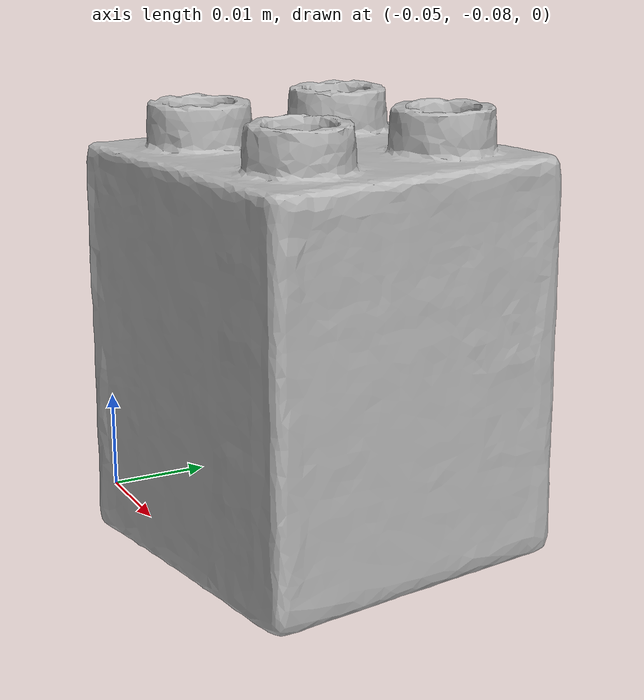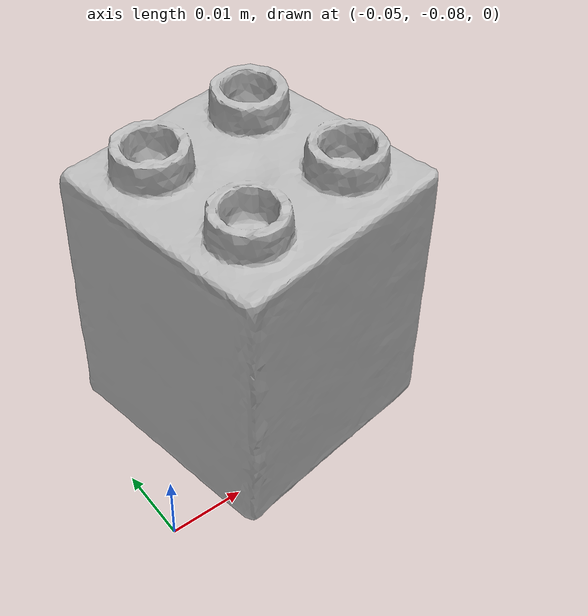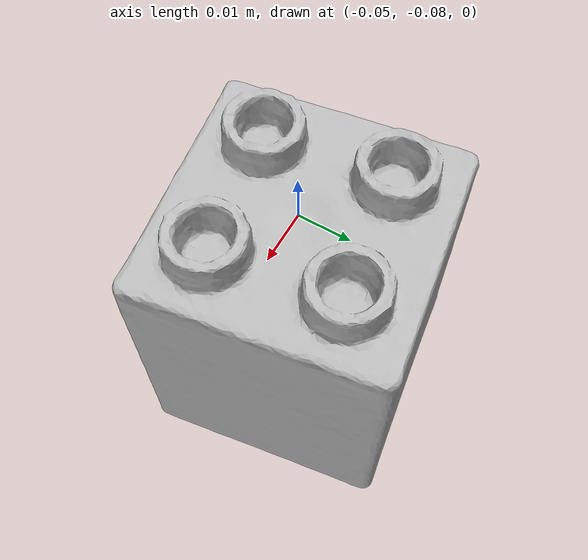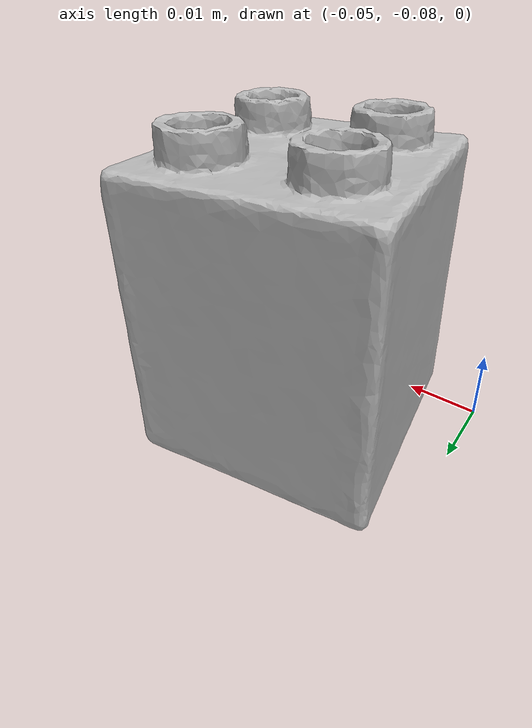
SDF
<?xml version='1.0'?>
<sdf version="1.4">
  <model name="f_lego_duplo">
    <static>false</static>
    <link name="link">
      <inertial>
        <pose>-0.028303653148494836 -0.06646108978076669 0.02360720585959244 3.080372202841051 0.147020869635075 -3.020982405318834</pose>
        <mass>3.094883764375316e-05</mass>
        <inertia>
          <ixx>5.9147580171445955e-09</ixx>
          <ixy>-4.205742611926794e-26</ixy>
          <ixz>-1.081027487550294e-26</ixz>
          <iyy>5.903230909155454e-09</iyy>
          <iyz>1.9680603330939063e-24</iyz>
          <izz>5.691088145340697e-09</izz>
        </inertia>
      </inertial>
      <collision name="collision">
        <geometry>
          <mesh>
            <!-- Use a downsampled mesh for collisions -->
            <uri>model://073-f_lego_duplo/google_16k/073-f_lego_duplo.obj</uri>
            </mesh>
        </geometry>
        <surface>
          <friction>
            <ode>
              <mu>0.9</mu>
              <mu2>0.9</mu2>
            </ode>
          </friction>
          <contact>
            <ode>
              <kp>1000000000000.0</kp>
              <kd>1</kd>
              <min_depth>0.0001</min_depth>
              <max_vel>0.01</max_vel>
            </ode>
          </contact>
          <bounce>
            <restitution_coefficient>0.1</restitution_coefficient>
            <threshold>1000.0</threshold>
          </bounce>
        </surface>
      </collision>
      <visual name="visual">
        <geometry>
          <mesh>
            <uri>model://073-f_lego_duplo/google_16k/073-f_lego_duplo.dae</uri>
            </mesh>
        </geometry>
      </visual>
    </link>
  </model>
</sdf>
